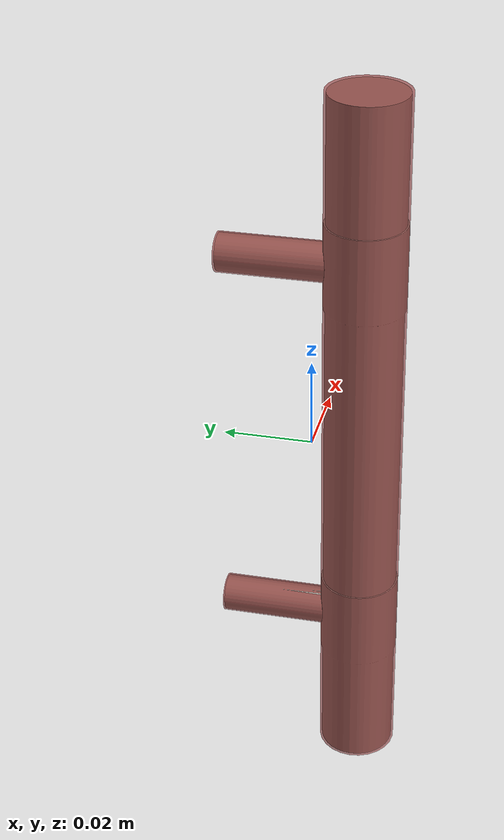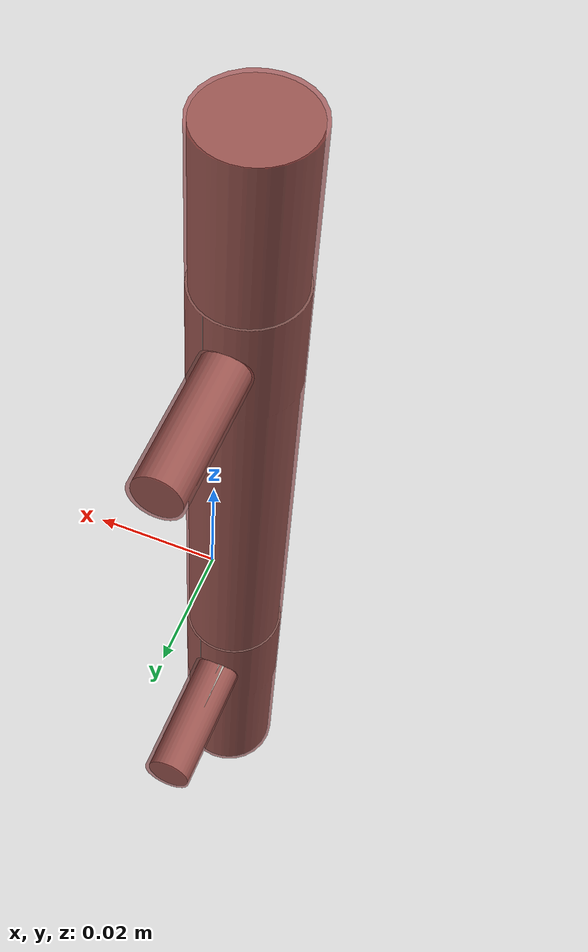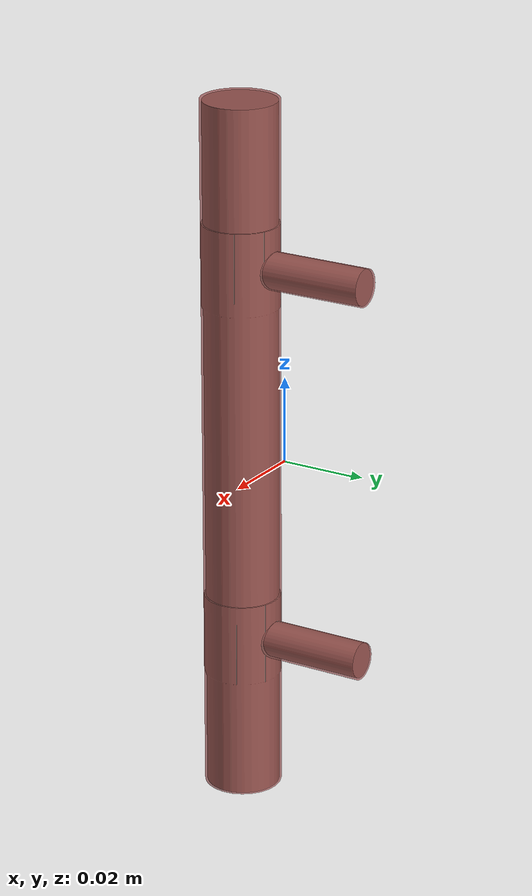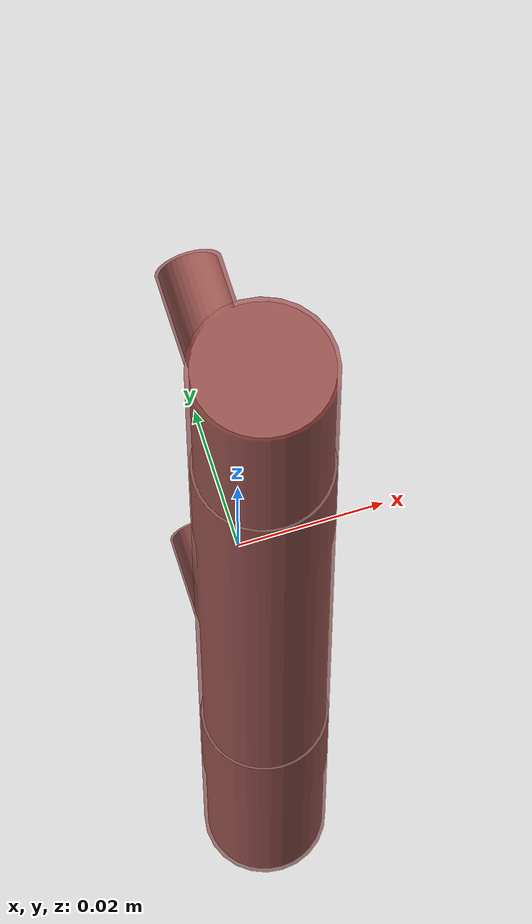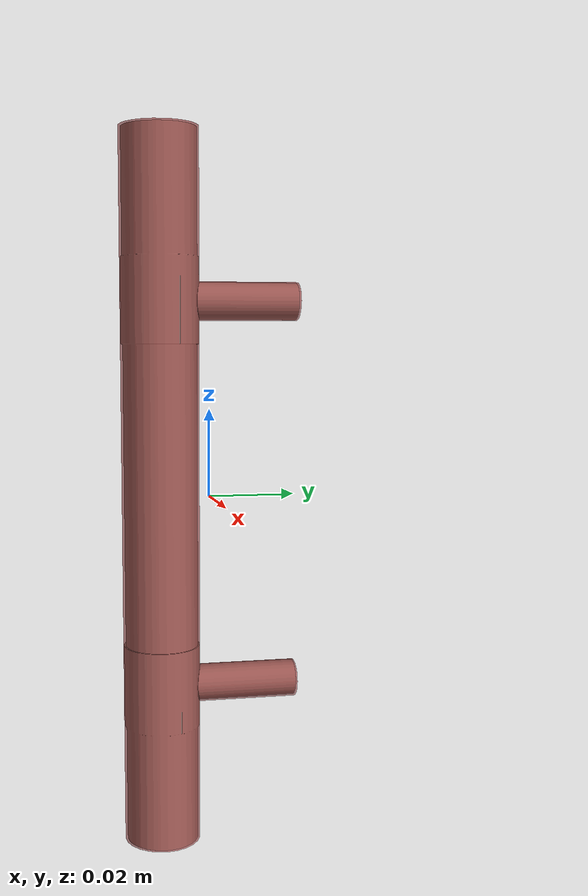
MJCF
<?xml version='1.0' encoding='UTF-8'?>
<mujoco model="model">
  <option timestep="0.002" gravity="0.0 0.0 -9.81"/>
  <compiler angle="radian"/>
  <asset>
    <mesh file="visuals/CabinetHandle014.obj" name="CabinetHandle014_vis"/>
    <texture file="visuals/T_BC001.png" name="tex" type="2d"/>
    <material name="mat" rgba="1 1 1 1.0" texture="tex" shininess="-1023.0" specular="0.3103448502657381"/>
  </asset>
  <default>
    <default class="visual">
      <geom conaffinity="0" contype="0" group="1" type="mesh"/>
    </default>
    <default class="collision">
      <geom group="0" rgba="0.5 0 0 0.5" density="1.0" solref="0.004 1" solimp="0.998 0.998 0.001"/>
    </default>
    <default class="spawn">
      <geom group="0" rgba="1 1 1 0.5" contype="0" conaffinity="0"/>
      <site group="0" rgba="1 1 1 0.5"/>
    </default>
    <default class="region">
      <geom group="1" conaffinity="0" contype="0" rgba="0 1 0 0" mass="0"/>
    </default>
  </default>
  <worldbody>
    <body>
      <body name="object">
        <geom mesh="CabinetHandle014_vis" type="mesh" solimp="0.998 0.998 0.001" solref="0.001 1" friction="0.95 0.3 0.1" class="visual" material="mat"/>
        <geom type="cylinder" pos="-0.00003469 -0.01140898 0.00006028" size="0.00898772943764925 0.08251278102397919" quat="1.0 0.0 0.0 0.0" class="collision"/>
        <geom type="cylinder" pos="0.00008337 0.00805506 0.04462290" size="0.004386488813906908 0.012433787807822227" quat="0.7071067094802856 0.7071068286895752 0.0 0.0" class="collision"/>
        <geom type="cylinder" pos="0.00008337 0.00805506 -0.04470924" size="0.004386488813906908 0.012433787807822227" quat="0.7071067094802856 0.7071068286895752 0.0 0.0" class="collision"/>
        <geom class="region" name="reg_main" type="box" pos="0.0 -3.299999999997749e-07 0.0" size="0.00986896 0.02124053 0.08330413"/>
      </body>
    </body>
  </worldbody>
  <actuator/>
</mujoco>
